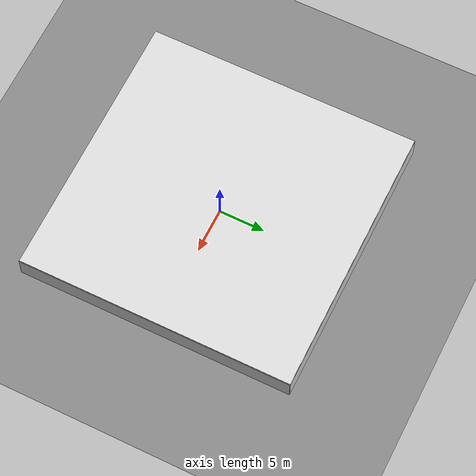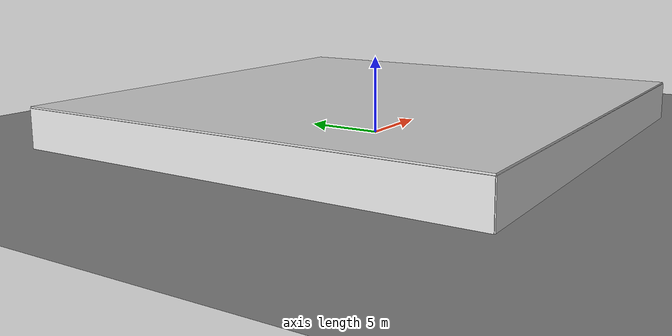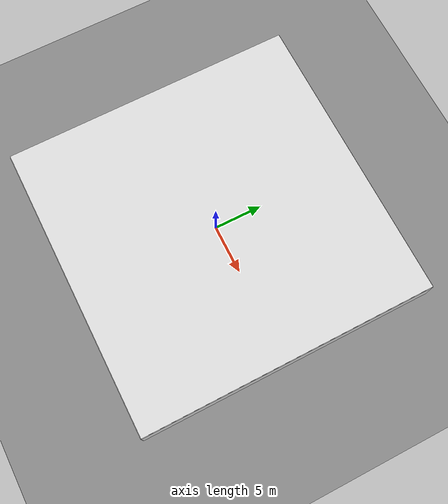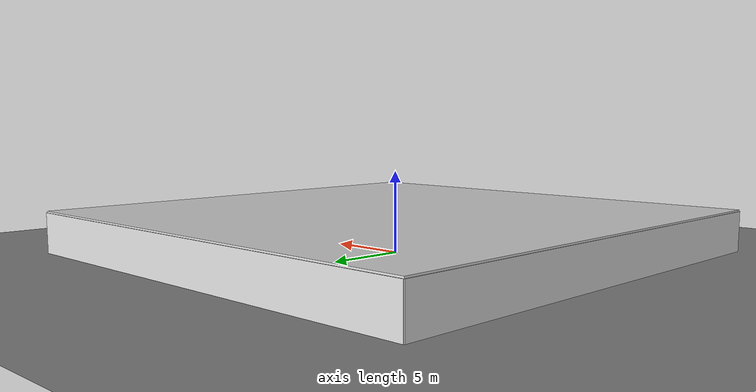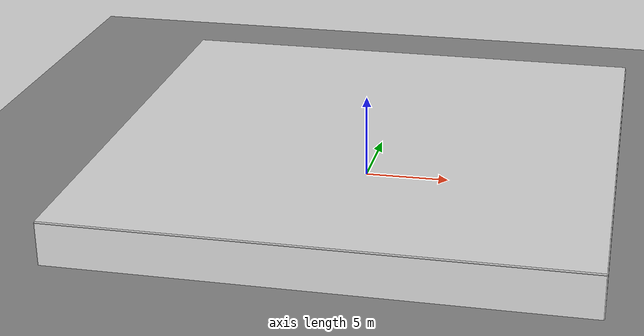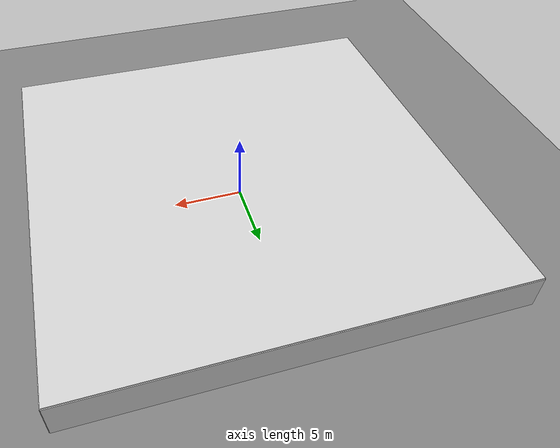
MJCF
<mujoco model="scene">

  <visual>
    <headlight diffuse="0.6 0.6 0.6" ambient="0.3 0.3 0.3" specular="0 0 0"/>
    <rgba haze="0.871 0.616 0.4 0.5"/>
    <global azimuth="-130" elevation="-20"/>
  </visual>

  <asset>
    <texture builtin="gradient" height="100" rgb1="0.9 0.9 0.9" rgb2="0.55 0.25 0.0" type="skybox" width="100"/>
    <include file="../../room/objects/materials.xml"/>
  </asset>

    <worldbody>
        <geom name="floor" friction="1 .1 .1" pos="0 0 0" size="0 0 0.125" type="plane" material="mat_floor" condim="3" conaffinity="1" contype="1" group="2"/>
        <light cutoff="1000" diffuse="1.5 1.5 1.5" dir="-0 0 -1.3" directional="true" exponent="10" pos="0 0 10.3" specular=".1 .1 .1" castshadow="false"/>

        <geom name="wall_negx" type="box" pos="-15.0 0.0 1.25" size="0.05 15.0 1.25" material="mat_wall"/>
        <geom name="wall_posx" type="box" pos=" 15.0 0.0 1.25" size="0.05 15.0 1.25" material="mat_wall"/>
        <geom name="wall_negy" type="box" pos="0.0 -15.0 1.25" size="15.0 0.05 1.25" material="mat_wall"/>
        <geom name="wall_posy" type="box" pos="0.0  15.0 1.25" size="15.0 0.05 1.25" material="mat_wall"/>

        <geom name="ceiling" type="box"
          pos="0 0 2.55"
          size="15.0 15.0 0.05"
          material="mat_wall"
          contype="1" conaffinity="1"
        />

        <!-- SCENARIO: table_02 -->
        <!-- TARGET_BODY_NAME: table_target -->
        <!-- LAYOUT: target=table, distance=near, side=right, difficulty=easy -->

        <!-- TARGET: table -->
        <body name="table_target" pos="2.5202 -1.3685 0.0" euler="0 0 -0.8752">
          <include file="../../room/objects/table.xml"/>
        </body>

        <!-- OBSTRUCTOR: none -->

        <!-- DISTRACTORS: none -->
    </worldbody>
</mujoco>

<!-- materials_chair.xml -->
<mujoco>
  <texture name="tex_wood_chair" type="2d" file="oak_veneer_01_diff_2k.png"/>
  <material name="mat_wood_chair"
            texture="tex_wood_chair"
            texrepeat="1.2 1.2"
            texuniform="true"
            rgba="1 1 1 1"
            specular="0.22"
            shininess="0.35"
            reflectance="0.04"/>
</mujoco>

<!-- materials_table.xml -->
<mujoco>
  <texture name="tex_wood_table" type="2d" file="wood_table_001_diff_2k.png"/>
  <material name="mat_wood_table"
            texture="tex_wood_table"
            texrepeat="1.2 1.2"
            texuniform="true"
            rgba="1 1 1 1"
            specular="0.22"
            shininess="0.35"
            reflectance="0.04"/>
</mujoco>

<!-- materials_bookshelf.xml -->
<mujoco>
  <texture name="tex_bookshelf_wood"
           type="2d"
           file="oak_veneer_01_diff_2k.png"/>

  <material name="mat_wood_bookshelf"
            texture="tex_bookshelf_wood"
            texrepeat="1.2 1.2"
            texuniform="true"
            rgba="1 1 1 1"
            specular="0.22"
            shininess="0.35"
            reflectance="0.04"/>
</mujoco>

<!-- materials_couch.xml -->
<mujoco>
  <texture name="tex_wood_couch" type="2d" file="wood_table_001_diff_2k.png"/>
  <material name="mat_wood_couch"
            texture="tex_wood_couch"
            texrepeat="1.2 1.2"
            texuniform="true"
            rgba="1 1 1 1"
            specular="0.22"
            shininess="0.35"
            reflectance="0.04"/>

  <texture name="tex_fabric" type="2d" file="rough_linen_diff_2k.png"/>
  <material name="mat_fabric"
            texture="tex_fabric"
            texrepeat="1.2 1.2"
            texuniform="true"
            rgba="1 1 1 1"
            specular="0.10"
            shininess="0.08"
            reflectance="0.01"/>
</mujoco>

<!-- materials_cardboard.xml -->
<mujoco>
  <texture name="tex_cardboard" type="2d" file="cardboard.png"/>
  <material name="mat_cardboard"
            texture="tex_cardboard"
            texrepeat="1.2 1.2"
            texuniform="true"
            rgba="1 1 1 1"
            specular="0.10"
            shininess="0.08"
            reflectance="0.01"/>
</mujoco>

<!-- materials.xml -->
<mujoco>
  <material name="mat_wall" rgba="0.85 0.85 0.85 1"/>
  <include file="materials_chair.xml"/>

  <include file="materials_table.xml"/>

  <include file="materials_bookshelf.xml"/>
  <material name="mat_book_red" rgba="0.70 0.18 0.16 1"/>
  <material name="mat_book_blue" rgba="0.16 0.31 0.62 1"/>
  <material name="mat_book_green" rgba="0.22 0.45 0.24 1"/>
  <material name="mat_book_yellow" rgba="0.78 0.66 0.22 1"/>
  <material name="mat_book_dark" rgba="0.20 0.18 0.17 1"/>

  <include file="materials_couch.xml"/>
  <include file="materials_cardboard.xml"/>

  <texture name="tex_metal" type="2d" file="metal.png"/>
  <material name="mat_metal" texture="tex_metal" texrepeat="2 2" reflectance="0.3"/>
  <material name="mat_trash_can_dark_green"
            texture="tex_metal"
            texrepeat="2 2"
            rgba="0.10 0.18 0.12 1"
            specular="0.18"
            shininess="0.20"
            reflectance="0.02"/>

  <texture name="tex_floor" type="2d" builtin="checker" width="512" height="512"
           rgb1="0.55 0.55 0.55" rgb2="0.50 0.50 0.50"/>
  <material name="mat_floor" texture="tex_floor" texrepeat="4 4" reflectance="0.00"/>

</mujoco>

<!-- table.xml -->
<mujoco>
  <body>
    <!-- tabletop -->
    <geom name="table_top" type="box"
          pos="0 0 0.595" size="0.62 0.42 0.035"
          material="mat_wood_table"/>
    <geom name="table_helper_front" type="box"
          pos="0 0.295 0.275" size="0.450 0.012 0.275"
          rgba="0 0 0 0"/>
    <geom name="table_helper_back" type="box"
          pos="0 -0.295 0.275" size="0.450 0.012 0.275"
          rgba="0 0 0 0"/>
    <geom name="table_helper_left" type="box"
          pos="-0.515 0 0.275" size="0.012 0.245 0.275"
          rgba="0 0 0 0"/>
    <geom name="table_helper_right" type="box"
          pos="0.515 0 0.275" size="0.012 0.245 0.275"
          rgba="0 0 0 0"/>
    <geom name="table_top_bevel_front" type="box"
          pos="0 0.395 0.555" size="0.58 0.012 0.012"
          material="mat_wood_table"/>
    <geom name="table_top_bevel_back" type="box"
          pos="0 -0.395 0.555" size="0.58 0.012 0.012"
          material="mat_wood_table"/>
    <geom name="table_top_bevel_left" type="box"
          pos="-0.595 0 0.555" size="0.012 0.36 0.012"
          material="mat_wood_table"/>
    <geom name="table_top_bevel_right" type="box"
          pos="0.595 0 0.555" size="0.012 0.36 0.012"
          material="mat_wood_table"/>

    <!-- apron -->
    <geom name="table_apron_front" type="box"
          pos="0 0.335 0.515" size="0.53 0.025 0.045"
          material="mat_wood_table"/>
    <geom name="table_apron_back" type="box"
          pos="0 -0.335 0.515" size="0.53 0.025 0.045"
          material="mat_wood_table"/>
    <geom name="table_apron_left" type="box"
          pos="-0.535 0 0.515" size="0.025 0.29 0.045"
          material="mat_wood_table"/>
    <geom name="table_apron_right" type="box"
          pos="0.535 0 0.515" size="0.025 0.29 0.045"
          material="mat_wood_table"/>

    <!-- legs -->
    <geom name="table_leg_fl" type="box"
          pos="0.515 0.295 0.255" size="0.032 0.032 0.255"
          material="mat_wood_table"/>
    <geom name="table_leg_fr" type="box"
          pos="0.515 -0.295 0.255" size="0.032 0.032 0.255"
          material="mat_wood_table"/>
    <geom name="table_leg_rl" type="box"
          pos="-0.515 0.295 0.255" size="0.032 0.032 0.255"
          material="mat_wood_table"/>
    <geom name="table_leg_rr" type="box"
          pos="-0.515 -0.295 0.255" size="0.032 0.032 0.255"
          material="mat_wood_table"/>

    <!-- lower stretchers -->
    <geom name="table_stretcher_left" type="box"
          pos="-0.515 0 0.105" size="0.015 0.295 0.015"
          material="mat_wood_table"/>
    <geom name="table_stretcher_right" type="box"
          pos="0.515 0 0.105" size="0.015 0.295 0.015"
          material="mat_wood_table"/>
    <geom name="table_stretcher_front" type="box"
          pos="0 0.295 0.120" size="0.515 0.015 0.015"
          material="mat_wood_table"/>
    <geom name="table_stretcher_back" type="box"
          pos="0 -0.295 0.120" size="0.515 0.015 0.015"
          material="mat_wood_table"/>

  </body>
</mujoco>
